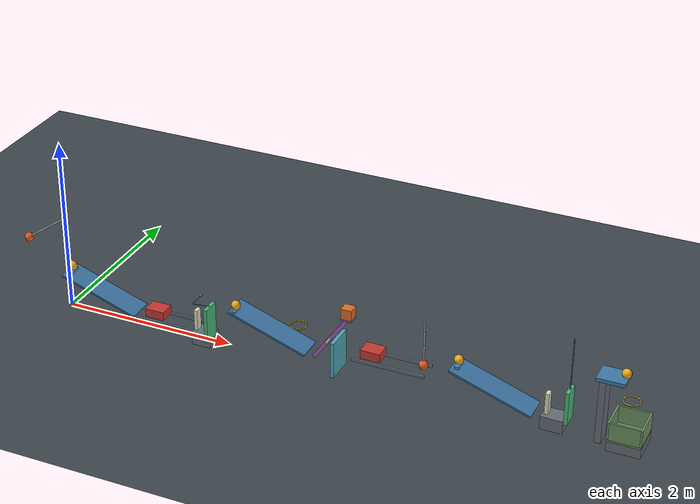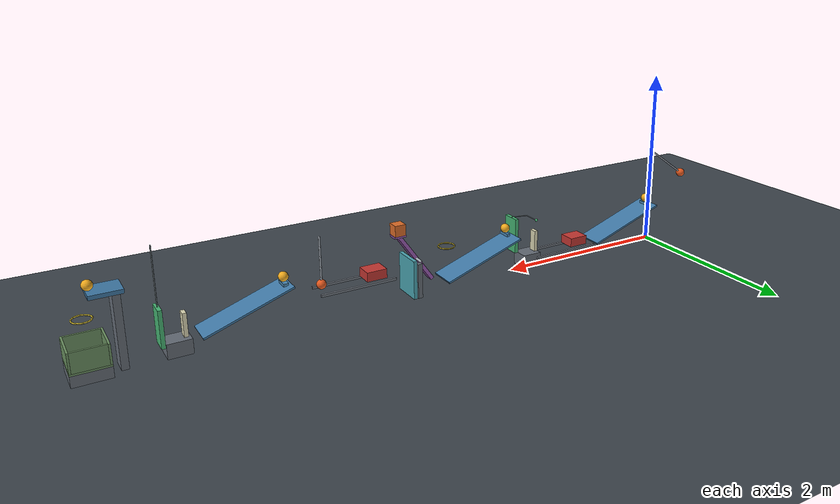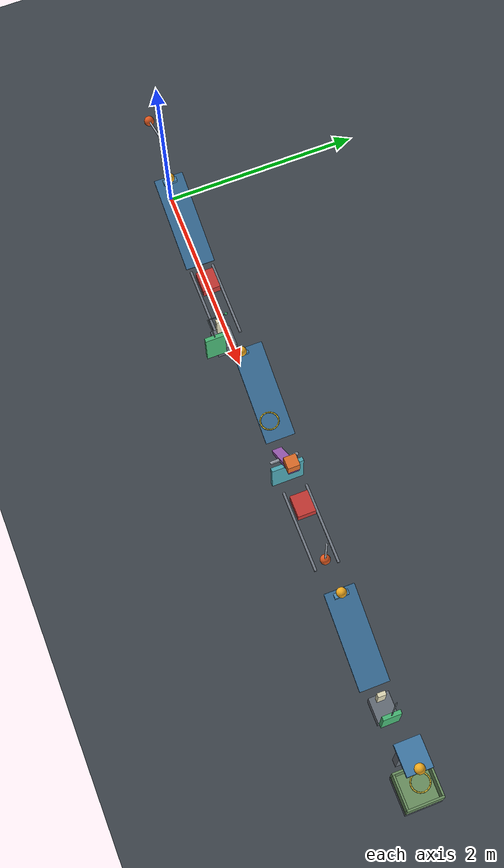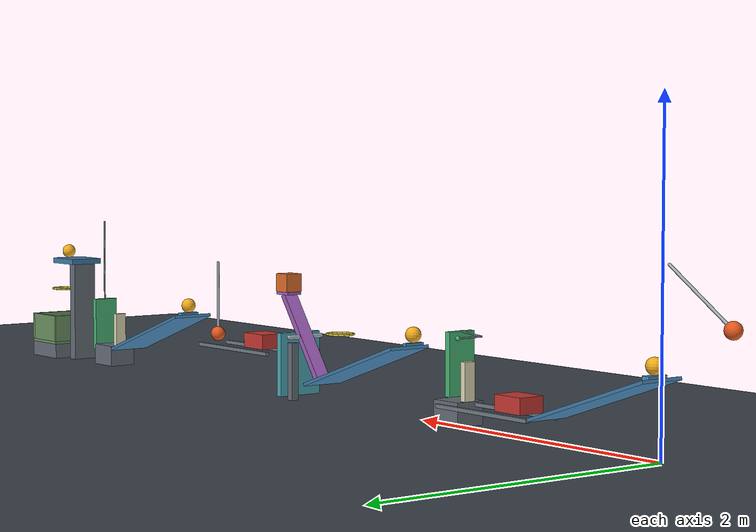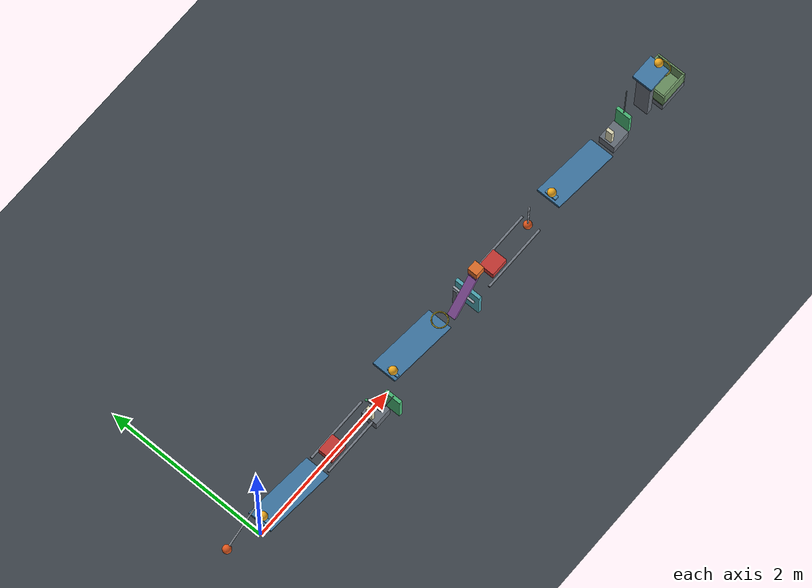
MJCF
<mujoco model="revised_domino_chain">
  <compiler angle="degree" autolimits="true"/>
  <option timestep="0.002" gravity="0 0 -9.81" integrator="implicitfast" solver="Newton" iterations="100" tolerance="1e-10"/>
  <size nconmax="1000" njmax="4000"/>
  <visual>
    <global azimuth="90" elevation="-18"/>
    <map znear="0.01" zfar="30"/>
    <quality shadowsize="2048"/>
  </visual>

  <worldbody>
    <light name="main_light" pos="3 -3 6" dir="0 0.4 -1" diffuse="0.85 0.85 0.85"/>
    <light name="fill_light" pos="3 3 4" dir="0 -0.4 -1" diffuse="0.45 0.45 0.45"/>
    <camera name="overview" pos="3.1 -7 3.2" xyaxes="1 0 0 0 0.36 0.933"/>
    <geom name="floor" type="plane" size="10 5 0.1" rgba="0.24 0.27 0.30 1" friction="0.68 0.005 0.0001" solref="0.008 0.6901" solimp="0.95 0.99 0.001"/>

    <body name="pendulum1" pos="-0.045901 0 1.07" euler="0 55 0">
      <joint name="pendulum1_hinge" type="hinge" axis="0 -1 0" damping="0.04" range="0 135"/>
      <geom name="pendulum1_rod" type="capsule" fromto="0 0 0 0 0 -0.55" size="0.009" mass="0.04" rgba="0.65 0.68 0.72 1" friction="0.68 0.005 0.0001" solref="0.008 0.6901"/>
      <geom name="pendulum1_bob" type="sphere" pos="0 0 -0.55" size="0.05" mass="0.36" rgba="0.90 0.35 0.12 1" friction="0.68 0.005 0.0001" solref="0.008 0.6901"/>
    </body>

    <body name="ball1" pos="0.054099 0 0.52">
      <freejoint name="ball1_free"/>
      <geom name="ball1_geom" type="sphere" size="0.05" mass="0.20" rgba="0.96 0.68 0.12 1" friction="0.68 0.005 0.0001" solref="0.008 0.6901"/>
    </body>

    <!-- Parking ledges hold the balls at rest until struck. -->
    <!-- Inclined surfaces are 0.95 m long and 0.30 m wide, with low edges at z=0.15. -->
    <body name="ramp1" pos="0 0 0">
      <geom name="ramp1_surface" type="box" pos="0.445865 0 0.295190" euler="0 19 0" size="0.475 0.15 0.01" rgba="0.25 0.48 0.66 1" friction="0.68 0.005 0.0001" solref="0.008 0.6901"/>
      <geom name="ramp1_parking_ledge" type="box" pos="0.054099 0 0.455" size="0.025 0.07 0.015" rgba="0.30 0.55 0.72 1" friction="0.68 0.005 0.0001" solref="0.008 0.6901"/>
    </body>

    <body name="cart1" pos="1.128242 0 0.20">
      <joint name="cart1_slide" type="slide" axis="1 0 0" damping="0.20" range="0 0.40" solreflimit="0.004 1"/>
      <geom name="cart1_geom" type="box" size="0.11 0.09 0.05" mass="0.50" rgba="0.78 0.22 0.20 1" friction="0.68 0.005 0.0001" solref="0.008 0.6901"/>
    </body>

    <body name="cart1_guide" pos="1.328242 0 0.13">
      <geom name="cart1_guide_left" type="box" pos="0 -0.115 0" size="0.40 0.012 0.012" contype="0" conaffinity="0" rgba="0.45 0.48 0.52 1"/>
      <geom name="cart1_guide_right" type="box" pos="0 0.115 0" size="0.40 0.012 0.012" contype="0" conaffinity="0" rgba="0.45 0.48 0.52 1"/>
    </body>

    <body name="domino1" pos="1.653242 -0.065 0.27">
      <freejoint name="domino1_free"/>
      <geom name="domino1_geom" type="box" size="0.02 0.04 0.12" mass="0.25" rgba="0.88 0.86 0.72 1" friction="0.68 0.005 0.0001" solref="0.008 0.6901"/>
    </body>

    <body name="domino1_support" pos="1.741242 -0.065 0.075">
      <geom name="domino1_support_geom" type="box" size="0.11 0.10 0.075" rgba="0.40 0.43 0.47 1" friction="0.68 0.005 0.0001" solref="0.008 0.6901"/>
    </body>

    <!-- The panel sweeps beside ramp2. Its bracket first runs in the panel's lane. -->
    <!-- Only the transverse connector reaches the ball's lane, behind a larger tip. -->
    <!-- At approximately 50 degrees, the tip approaches ball2 from its upper-left side. -->
    <!-- At the 65-degree stop, the tip remains above the parking ledge. -->
    <body name="flap1" pos="1.873242 -0.19 0.15">
      <joint name="flap1_hinge" type="hinge" axis="0 1 0" damping="0.04" frictionloss="0.02" range="0 65" solreflimit="0.004 1"/>
      <geom name="flap1_panel" type="box" pos="0 0 0.20" size="0.02 0.10 0.20" mass="0.27" rgba="0.28 0.72 0.46 1" friction="0.68 0.005 0.0001" solref="0.008 0.6901"/>
      <geom name="flap1_striker_bracket" type="capsule" fromto="0 0 0.40 -0.201519 0 0.382129" size="0.005" mass="0.0125" rgba="0.50 0.55 0.58 1" friction="0.68 0.005 0.0001" solref="0.008 0.6901"/>
      <geom name="flap1_striker_connector" type="capsule" fromto="-0.201519 0 0.382129 -0.201519 0.19 0.382129" size="0.005" mass="0.0125" rgba="0.50 0.55 0.58 1" friction="0.68 0.005 0.0001" solref="0.008 0.6901"/>
      <geom name="flap1_striker_tip" type="sphere" pos="-0.201519 0.19 0.382129" size="0.015" mass="0.005" rgba="0.28 0.72 0.46 1" friction="0.68 0.005 0.0001" solref="0.008 0.6901"/>
    </body>

    <body name="ball2" pos="2.094099 0 0.52">
      <freejoint name="ball2_free"/>
      <geom name="ball2_geom" type="sphere" size="0.05" mass="0.20" rgba="0.96 0.68 0.12 1" friction="0.68 0.005 0.0001" solref="0.008 0.6901"/>
    </body>

    <body name="ramp2" pos="0 0 0">
      <geom name="ramp2_surface" type="box" pos="2.485865 0.075 0.295190" euler="0 19 0" size="0.475 0.15 0.01" rgba="0.25 0.48 0.66 1" friction="0.68 0.005 0.0001" solref="0.008 0.6901"/>
      <geom name="ramp2_parking_ledge" type="box" pos="2.094099 0 0.455" size="0.015 0.07 0.015" rgba="0.30 0.55 0.72 1" friction="0.68 0.005 0.0001" solref="0.008 0.6901"/>
    </body>

    <body name="seesaw1" pos="3.224658 0 0.416225" euler="0 -55 0">
      <joint name="seesaw1_hinge" type="hinge" axis="0 -1 0" damping="0.04" range="0 40" solreflimit="0.004 1"/>
      <geom name="seesaw1_beam" type="box" size="0.325 0.05 0.02" mass="0.52" rgba="0.62 0.37 0.72 1" friction="0.68 0.005 0.0001" solref="0.008 0.6901"/>
      <geom name="seesaw1_end_pad" type="box" pos="0.333192 0 0.005736" euler="0 55 0" size="0.065 0.055 0.01" mass="0.03" rgba="0.62 0.37 0.72 1" friction="0.68 0.005 0.0001" solref="0.008 0.6901"/>
    </body>

    <body name="seesaw1_support" pos="3.224658 0 0.19">
      <geom name="seesaw1_support_post" type="box" pos="0 0.10 0" size="0.025 0.025 0.19" rgba="0.40 0.43 0.47 1" friction="0.68 0.005 0.0001" solref="0.008 0.6901"/>
      <geom name="seesaw1_support_axle" type="capsule" fromto="0 -0.13 0.226225 0 0.13 0.226225" size="0.014" contype="0" conaffinity="0" rgba="0.65 0.68 0.72 1"/>
    </body>

    <!-- This support contact is intentional at initialization. -->
    <body name="block1" pos="3.411073 0 0.762449">
      <freejoint name="block1_free"/>
      <geom name="block1_geom" type="box" size="0.06 0.06 0.06" mass="0.35" rgba="0.88 0.43 0.16 1" friction="0.68 0.005 0.0001" solref="0.008 0.6901"/>
    </body>

    <!-- Approximately 0.16 m minimum clear diameter; this is too small for block1. -->
    <body name="ring1" pos="2.84 0 0.462449">
      <geom name="ring1_segment00" type="capsule" fromto="0.088704 0 0 0.081951 0.033945 0" size="0.007" rgba="0.85 0.76 0.22 1" friction="0.68 0.005 0.0001" solref="0.008 0.6901"/>
      <geom name="ring1_segment01" type="capsule" fromto="0.081951 0.033945 0 0.062723 0.062723 0" size="0.007" rgba="0.85 0.76 0.22 1" friction="0.68 0.005 0.0001" solref="0.008 0.6901"/>
      <geom name="ring1_segment02" type="capsule" fromto="0.062723 0.062723 0 0.033945 0.081951 0" size="0.007" rgba="0.85 0.76 0.22 1" friction="0.68 0.005 0.0001" solref="0.008 0.6901"/>
      <geom name="ring1_segment03" type="capsule" fromto="0.033945 0.081951 0 0 0.088704 0" size="0.007" rgba="0.85 0.76 0.22 1" friction="0.68 0.005 0.0001" solref="0.008 0.6901"/>
      <geom name="ring1_segment04" type="capsule" fromto="0 0.088704 0 -0.033945 0.081951 0" size="0.007" rgba="0.85 0.76 0.22 1" friction="0.68 0.005 0.0001" solref="0.008 0.6901"/>
      <geom name="ring1_segment05" type="capsule" fromto="-0.033945 0.081951 0 -0.062723 0.062723 0" size="0.007" rgba="0.85 0.76 0.22 1" friction="0.68 0.005 0.0001" solref="0.008 0.6901"/>
      <geom name="ring1_segment06" type="capsule" fromto="-0.062723 0.062723 0 -0.081951 0.033945 0" size="0.007" rgba="0.85 0.76 0.22 1" friction="0.68 0.005 0.0001" solref="0.008 0.6901"/>
      <geom name="ring1_segment07" type="capsule" fromto="-0.081951 0.033945 0 -0.088704 0 0" size="0.007" rgba="0.85 0.76 0.22 1" friction="0.68 0.005 0.0001" solref="0.008 0.6901"/>
      <geom name="ring1_segment08" type="capsule" fromto="-0.088704 0 0 -0.081951 -0.033945 0" size="0.007" rgba="0.85 0.76 0.22 1" friction="0.68 0.005 0.0001" solref="0.008 0.6901"/>
      <geom name="ring1_segment09" type="capsule" fromto="-0.081951 -0.033945 0 -0.062723 -0.062723 0" size="0.007" rgba="0.85 0.76 0.22 1" friction="0.68 0.005 0.0001" solref="0.008 0.6901"/>
      <geom name="ring1_segment10" type="capsule" fromto="-0.062723 -0.062723 0 -0.033945 -0.081951 0" size="0.007" rgba="0.85 0.76 0.22 1" friction="0.68 0.005 0.0001" solref="0.008 0.6901"/>
      <geom name="ring1_segment11" type="capsule" fromto="-0.033945 -0.081951 0 0 -0.088704 0" size="0.007" rgba="0.85 0.76 0.22 1" friction="0.68 0.005 0.0001" solref="0.008 0.6901"/>
      <geom name="ring1_segment12" type="capsule" fromto="0 -0.088704 0 0.033945 -0.081951 0" size="0.007" rgba="0.85 0.76 0.22 1" friction="0.68 0.005 0.0001" solref="0.008 0.6901"/>
      <geom name="ring1_segment13" type="capsule" fromto="0.033945 -0.081951 0 0.062723 -0.062723 0" size="0.007" rgba="0.85 0.76 0.22 1" friction="0.68 0.005 0.0001" solref="0.008 0.6901"/>
      <geom name="ring1_segment14" type="capsule" fromto="0.062723 -0.062723 0 0.081951 -0.033945 0" size="0.007" rgba="0.85 0.76 0.22 1" friction="0.68 0.005 0.0001" solref="0.008 0.6901"/>
      <geom name="ring1_segment15" type="capsule" fromto="0.081951 -0.033945 0 0.088704 0 0" size="0.007" rgba="0.85 0.76 0.22 1" friction="0.68 0.005 0.0001" solref="0.008 0.6901"/>
    </body>

    <!-- Additional stiction reduces susceptibility to a stray floor-level ball impact. -->
    <body name="door1" pos="3.30 0 0.02">
      <joint name="door1_hinge" type="hinge" axis="0 1 0" damping="0.04" frictionloss="0.06" range="0 70" solreflimit="0.004 1"/>
      <geom name="door1_panel" type="box" pos="0 0 0.21" size="0.02 0.16 0.21" mass="0.45" rgba="0.30 0.66 0.71 1" friction="0.68 0.005 0.0001" solref="0.008 0.6901"/>
    </body>

    <body name="cart2" pos="3.70 0 0.35">
      <joint name="cart2_slide" type="slide" axis="1 0 0" damping="0.20" range="0 0.42" solreflimit="0.004 1"/>
      <geom name="cart2_geom" type="box" size="0.11 0.09 0.05" mass="0.50" rgba="0.78 0.22 0.20 1" friction="0.68 0.005 0.0001" solref="0.008 0.6901"/>
    </body>

    <body name="cart2_guide" pos="3.91 0 0.28">
      <geom name="cart2_guide_left" type="box" pos="0 -0.115 0" size="0.41 0.012 0.012" contype="0" conaffinity="0" rgba="0.45 0.48 0.52 1"/>
      <geom name="cart2_guide_right" type="box" pos="0 0.115 0" size="0.41 0.012 0.012" contype="0" conaffinity="0" rgba="0.45 0.48 0.52 1"/>
    </body>

    <!-- Cart2 can now reach the bob before reaching its own hard stop. -->
    <body name="pendulum2" pos="4.265 0 0.85">
      <joint name="pendulum2_hinge" type="hinge" axis="0 -1 0" damping="0.04" range="0 38" solreflimit="0.004 1"/>
      <geom name="pendulum2_rod" type="capsule" fromto="0 0 0 0 0 -0.50" size="0.009" mass="0.035" rgba="0.65 0.68 0.72 1" friction="0.68 0.005 0.0001" solref="0.008 0.6901"/>
      <geom name="pendulum2_bob" type="sphere" pos="0 0 -0.50" size="0.05" mass="0.315" rgba="0.90 0.35 0.12 1" friction="0.68 0.005 0.0001" solref="0.008 0.6901"/>
    </body>

    <body name="ball3" pos="4.649099 0 0.52">
      <freejoint name="ball3_free"/>
      <geom name="ball3_geom" type="sphere" size="0.05" mass="0.20" rgba="0.96 0.68 0.12 1" friction="0.68 0.005 0.0001" solref="0.008 0.6901"/>
    </body>

    <body name="ramp3" pos="0 0 0">
      <geom name="ramp3_surface" type="box" pos="5.040865 0 0.295190" euler="0 19 0" size="0.475 0.15 0.01" rgba="0.25 0.48 0.66 1" friction="0.68 0.005 0.0001" solref="0.008 0.6901"/>
      <geom name="ramp3_parking_ledge" type="box" pos="4.649099 0 0.455" size="0.025 0.07 0.015" rgba="0.30 0.55 0.72 1" friction="0.68 0.005 0.0001" solref="0.008 0.6901"/>
    </body>

    <body name="domino2" pos="5.613242 0 0.27">
      <freejoint name="domino2_free"/>
      <geom name="domino2_geom" type="box" size="0.02 0.04 0.12" mass="0.25" rgba="0.88 0.86 0.72 1" friction="0.68 0.005 0.0001" solref="0.008 0.6901"/>
    </body>

    <body name="domino2_support" pos="5.691242 0 0.075">
      <geom name="domino2_support_geom" type="box" size="0.12 0.10 0.075" rgba="0.40 0.43 0.47 1" friction="0.68 0.005 0.0001" solref="0.008 0.6901"/>
    </body>

    <body name="flap2" pos="5.833242 0 1.08">
      <joint name="flap2_hinge" type="hinge" axis="0 -1 0" damping="0.04" range="0 60" solreflimit="0.004 1"/>
      <geom name="flap2_arm" type="capsule" fromto="0 0 0 0 0 -0.59" size="0.006" mass="0.02" rgba="0.50 0.55 0.58 1" friction="0.68 0.005 0.0001" solref="0.008 0.6901"/>
      <geom name="flap2_panel" type="box" pos="0 0 -0.78" size="0.02 0.09 0.19" mass="0.26" rgba="0.28 0.72 0.46 1" friction="0.68 0.005 0.0001" solref="0.008 0.6901"/>
    </body>

    <body name="ball4" pos="6.383242 0 0.83">
      <freejoint name="ball4_free"/>
      <geom name="ball4_geom" type="sphere" size="0.05" mass="0.20" rgba="0.96 0.68 0.12 1" friction="0.68 0.005 0.0001" solref="0.008 0.6901"/>
    </body>

    <body name="shelf1" pos="6.258242 0 0.76">
      <geom name="shelf1_surface" type="box" size="0.15 0.125 0.02" rgba="0.25 0.48 0.66 1" friction="0.68 0.005 0.0001" solref="0.008 0.6901"/>
    </body>

    <body name="shelf1_support" pos="6.175 0 0.37">
      <geom name="shelf1_support_post" type="box" size="0.035 0.09 0.37" rgba="0.40 0.43 0.47 1" friction="0.68 0.005 0.0001" solref="0.008 0.6901"/>
    </body>

    <body name="ring2" pos="6.463242 0 0.53">
      <geom name="ring2_segment00" type="capsule" fromto="0.088704 0 0 0.081951 0.033945 0" size="0.007" rgba="0.85 0.76 0.22 1" friction="0.68 0.005 0.0001" solref="0.008 0.6901"/>
      <geom name="ring2_segment01" type="capsule" fromto="0.081951 0.033945 0 0.062723 0.062723 0" size="0.007" rgba="0.85 0.76 0.22 1" friction="0.68 0.005 0.0001" solref="0.008 0.6901"/>
      <geom name="ring2_segment02" type="capsule" fromto="0.062723 0.062723 0 0.033945 0.081951 0" size="0.007" rgba="0.85 0.76 0.22 1" friction="0.68 0.005 0.0001" solref="0.008 0.6901"/>
      <geom name="ring2_segment03" type="capsule" fromto="0.033945 0.081951 0 0 0.088704 0" size="0.007" rgba="0.85 0.76 0.22 1" friction="0.68 0.005 0.0001" solref="0.008 0.6901"/>
      <geom name="ring2_segment04" type="capsule" fromto="0 0.088704 0 -0.033945 0.081951 0" size="0.007" rgba="0.85 0.76 0.22 1" friction="0.68 0.005 0.0001" solref="0.008 0.6901"/>
      <geom name="ring2_segment05" type="capsule" fromto="-0.033945 0.081951 0 -0.062723 0.062723 0" size="0.007" rgba="0.85 0.76 0.22 1" friction="0.68 0.005 0.0001" solref="0.008 0.6901"/>
      <geom name="ring2_segment06" type="capsule" fromto="-0.062723 0.062723 0 -0.081951 0.033945 0" size="0.007" rgba="0.85 0.76 0.22 1" friction="0.68 0.005 0.0001" solref="0.008 0.6901"/>
      <geom name="ring2_segment07" type="capsule" fromto="-0.081951 0.033945 0 -0.088704 0 0" size="0.007" rgba="0.85 0.76 0.22 1" friction="0.68 0.005 0.0001" solref="0.008 0.6901"/>
      <geom name="ring2_segment08" type="capsule" fromto="-0.088704 0 0 -0.081951 -0.033945 0" size="0.007" rgba="0.85 0.76 0.22 1" friction="0.68 0.005 0.0001" solref="0.008 0.6901"/>
      <geom name="ring2_segment09" type="capsule" fromto="-0.081951 -0.033945 0 -0.062723 -0.062723 0" size="0.007" rgba="0.85 0.76 0.22 1" friction="0.68 0.005 0.0001" solref="0.008 0.6901"/>
      <geom name="ring2_segment10" type="capsule" fromto="-0.062723 -0.062723 0 -0.033945 -0.081951 0" size="0.007" rgba="0.85 0.76 0.22 1" friction="0.68 0.005 0.0001" solref="0.008 0.6901"/>
      <geom name="ring2_segment11" type="capsule" fromto="-0.033945 -0.081951 0 0 -0.088704 0" size="0.007" rgba="0.85 0.76 0.22 1" friction="0.68 0.005 0.0001" solref="0.008 0.6901"/>
      <geom name="ring2_segment12" type="capsule" fromto="0 -0.088704 0 0.033945 -0.081951 0" size="0.007" rgba="0.85 0.76 0.22 1" friction="0.68 0.005 0.0001" solref="0.008 0.6901"/>
      <geom name="ring2_segment13" type="capsule" fromto="0.033945 -0.081951 0 0.062723 -0.062723 0" size="0.007" rgba="0.85 0.76 0.22 1" friction="0.68 0.005 0.0001" solref="0.008 0.6901"/>
      <geom name="ring2_segment14" type="capsule" fromto="0.062723 -0.062723 0 0.081951 -0.033945 0" size="0.007" rgba="0.85 0.76 0.22 1" friction="0.68 0.005 0.0001" solref="0.008 0.6901"/>
      <geom name="ring2_segment15" type="capsule" fromto="0.081951 -0.033945 0 0.088704 0 0" size="0.007" rgba="0.85 0.76 0.22 1" friction="0.68 0.005 0.0001" solref="0.008 0.6901"/>
    </body>

    <body name="box1" pos="6.463242 0 0.11">
      <geom name="box1_bottom" type="box" pos="0 0 0.01" size="0.18 0.18 0.01" rgba="0.42 0.57 0.38 1" friction="0.68 0.005 0.0001" solref="0.008 0.6901"/>
      <geom name="box1_wall_left" type="box" pos="-0.17 0 0.12" size="0.01 0.18 0.10" rgba="0.42 0.57 0.38 1" friction="0.68 0.005 0.0001" solref="0.008 0.6901"/>
      <geom name="box1_wall_right" type="box" pos="0.17 0 0.12" size="0.01 0.18 0.10" rgba="0.42 0.57 0.38 1" friction="0.68 0.005 0.0001" solref="0.008 0.6901"/>
      <geom name="box1_wall_front" type="box" pos="0 -0.17 0.12" size="0.16 0.01 0.10" rgba="0.42 0.57 0.38 1" friction="0.68 0.005 0.0001" solref="0.008 0.6901"/>
      <geom name="box1_wall_back" type="box" pos="0 0.17 0.12" size="0.16 0.01 0.10" rgba="0.42 0.57 0.38 1" friction="0.68 0.005 0.0001" solref="0.008 0.6901"/>
    </body>

    <body name="box1_support" pos="6.463242 0 0.055">
      <geom name="box1_support_geom" type="box" size="0.18 0.18 0.055" rgba="0.40 0.43 0.47 1" friction="0.68 0.005 0.0001" solref="0.008 0.6901"/>
    </body>
  </worldbody>

  <actuator>
    <motor name="flap1_assist" joint="flap1_hinge" gear="1" ctrllimited="true" ctrlrange="0 0.055"/>
    <motor name="seesaw1_assist" joint="seesaw1_hinge" gear="1" ctrllimited="true" ctrlrange="0 0.68"/>
  </actuator>

  <!-- Initial generalized velocities are zero; actuator controls remain constant. -->
  <keyframe>
    <key name="start" time="0" ctrl="0.055 0.68"/>
  </keyframe>
</mujoco>
